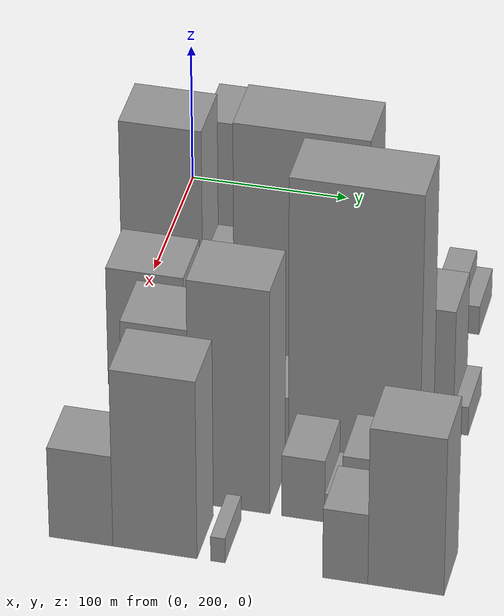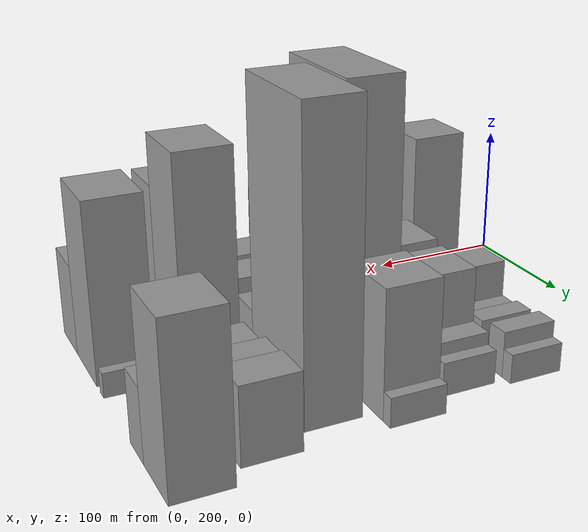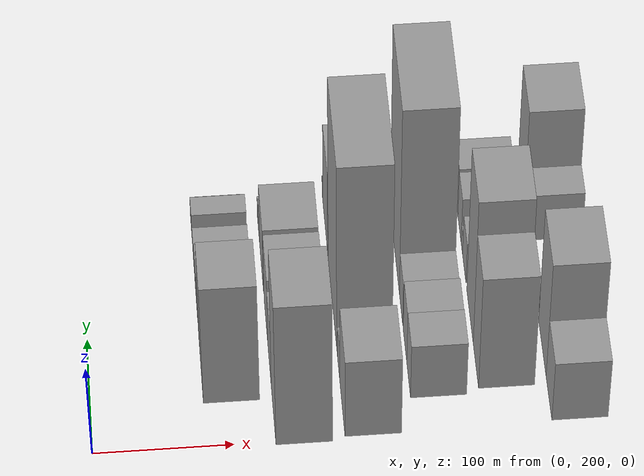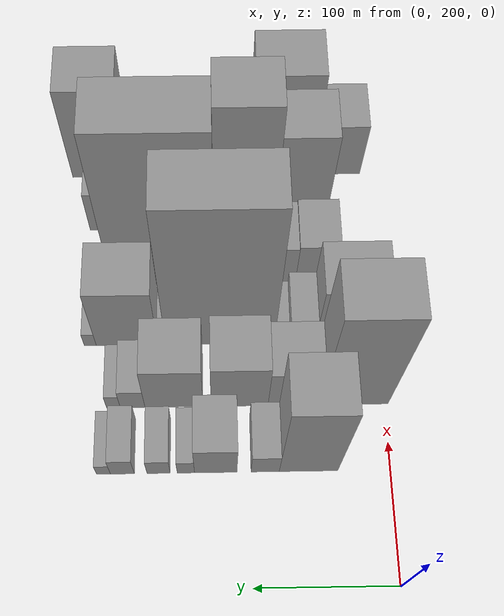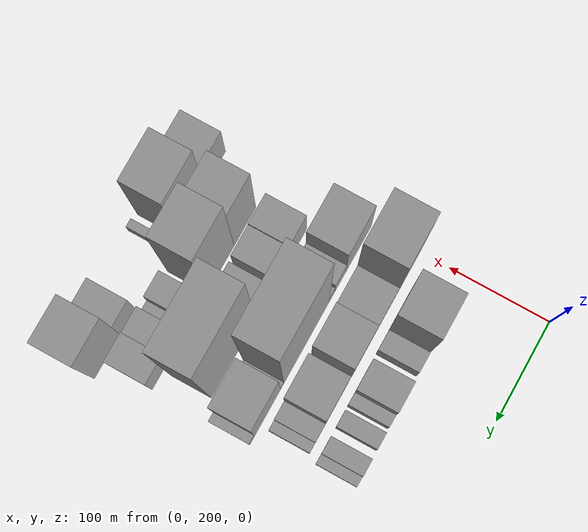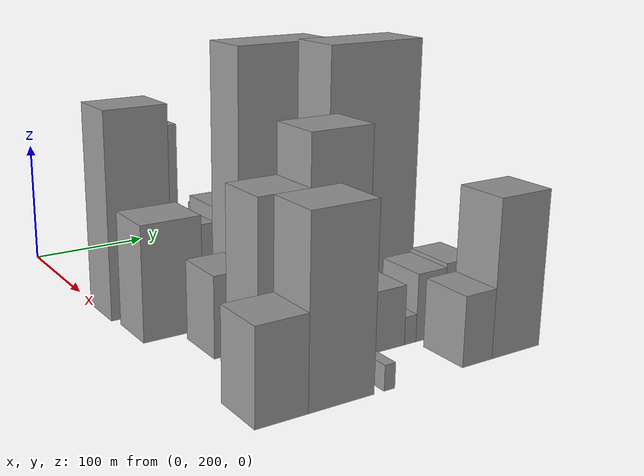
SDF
<sdf version="1.6">
 <world name="default">
  <model name="building_28">
   <static>1</static>
   <pose>100.0000 258.3487 0 0.000000 0.000000 0.000000</pose>
   <link name="link">
    <pose>0 0 66.00 0 0 0</pose>
    <collision name="collision"><geometry><box><size>40.0000 41.6270 132.0000</size></box></geometry></collision>
    <visual name="visual">
     <cast_shadows>0</cast_shadows>
     <geometry><box><size>40.0000 41.6270 132.0000</size></box></geometry>
     <material>
      <script>
       <uri>model://grey_wall/materials/scripts</uri>
       <uri>model://grey_wall/materials/textures</uri>
       <name>vrc/grey_wall</name>
      </script>
     </material>
    </visual>
   </link>
  </model>
  <model name="building_29">
   <static>1</static>
   <pose>100.0000 289.1495 0 0.000000 0.000000 0.000000</pose>
   <link name="link">
    <pose>0 0 18.00 0 0 0</pose>
    <collision name="collision"><geometry><box><size>40.0000 19.9747 36.0000</size></box></geometry></collision>
    <visual name="visual">
     <cast_shadows>0</cast_shadows>
     <geometry><box><size>40.0000 19.9747 36.0000</size></box></geometry>
     <material>
      <script>
       <uri>model://grey_wall/materials/scripts</uri>
       <uri>model://grey_wall/materials/textures</uri>
       <name>vrc/grey_wall</name>
      </script>
     </material>
    </visual>
   </link>
  </model>
  <model name="building_30">
   <static>1</static>
   <pose>100.0000 324.1866 0 0.000000 0.000000 0.000000</pose>
   <link name="link">
    <pose>0 0 27.00 0 0 0</pose>
    <collision name="collision"><geometry><box><size>40.0000 30.0996 54.0000</size></box></geometry></collision>
    <visual name="visual">
     <cast_shadows>0</cast_shadows>
     <geometry><box><size>40.0000 30.0996 54.0000</size></box></geometry>
     <material>
      <script>
       <uri>model://grey_wall/materials/scripts</uri>
       <uri>model://grey_wall/materials/textures</uri>
       <name>vrc/grey_wall</name>
      </script>
     </material>
    </visual>
   </link>
  </model>
  <model name="building_31">
   <static>1</static>
   <pose>100.0000 345.3489 0 0.000000 0.000000 0.000000</pose>
   <link name="link">
    <pose>0 0 13.50 0 0 0</pose>
    <collision name="collision"><geometry><box><size>40.0000 12.2250 27.0000</size></box></geometry></collision>
    <visual name="visual">
     <cast_shadows>0</cast_shadows>
     <geometry><box><size>40.0000 12.2250 27.0000</size></box></geometry>
     <material>
      <script>
       <uri>model://grey_wall/materials/scripts</uri>
       <uri>model://grey_wall/materials/textures</uri>
       <name>vrc/grey_wall</name>
      </script>
     </material>
    </visual>
   </link>
  </model>
  <model name="building_32">
   <static>1</static>
   <pose>100.0000 364.6628 0 0.000000 0.000000 0.000000</pose>
   <link name="link">
    <pose>0 0 15.00 0 0 0</pose>
    <collision name="collision"><geometry><box><size>40.0000 16.4029 30.0000</size></box></geometry></collision>
    <visual name="visual">
     <cast_shadows>0</cast_shadows>
     <geometry><box><size>40.0000 16.4029 30.0000</size></box></geometry>
     <material>
      <script>
       <uri>model://grey_wall/materials/scripts</uri>
       <uri>model://grey_wall/materials/textures</uri>
       <name>vrc/grey_wall</name>
      </script>
     </material>
    </visual>
   </link>
  </model>
  <model name="building_33">
   <static>1</static>
   <pose>100.0000 390.3168 0 0.000000 0.000000 0.000000</pose>
   <link name="link">
    <pose>0 0 16.50 0 0 0</pose>
    <collision name="collision"><geometry><box><size>40.0000 16.9051 33.0000</size></box></geometry></collision>
    <visual name="visual">
     <cast_shadows>0</cast_shadows>
     <geometry><box><size>40.0000 16.9051 33.0000</size></box></geometry>
     <material>
      <script>
       <uri>model://grey_wall/materials/scripts</uri>
       <uri>model://grey_wall/materials/textures</uri>
       <name>vrc/grey_wall</name>
      </script>
     </material>
    </visual>
   </link>
  </model>
  <model name="building_34">
   <static>1</static>
   <pose>100.0000 403.7031 0 0.000000 0.000000 0.000000</pose>
   <link name="link">
    <pose>0 0 10.50 0 0 0</pose>
    <collision name="collision"><geometry><box><size>40.0000 9.8676 21.0000</size></box></geometry></collision>
    <visual name="visual">
     <cast_shadows>0</cast_shadows>
     <geometry><box><size>40.0000 9.8676 21.0000</size></box></geometry>
     <material>
      <script>
       <uri>model://grey_wall/materials/scripts</uri>
       <uri>model://grey_wall/materials/textures</uri>
       <name>vrc/grey_wall</name>
      </script>
     </material>
    </visual>
   </link>
  </model>
  <model name="building_72">
   <static>1</static>
   <pose>149.0000 222.7873 0 0.000000 0.000000 0.000000</pose>
   <link name="link">
    <pose>0 0 79.50 0 0 0</pose>
    <collision name="collision"><geometry><box><size>40.0000 50.3372 159.0000</size></box></geometry></collision>
    <visual name="visual">
     <cast_shadows>0</cast_shadows>
     <geometry><box><size>40.0000 50.3372 159.0000</size></box></geometry>
     <material>
      <script>
       <uri>model://grey_wall/materials/scripts</uri>
       <uri>model://grey_wall/materials/textures</uri>
       <name>vrc/grey_wall</name>
      </script>
     </material>
    </visual>
   </link>
  </model>
  <model name="building_73">
   <static>1</static>
   <pose>149.0000 266.7181 0 0.000000 0.000000 0.000000</pose>
   <link name="link">
    <pose>0 0 31.50 0 0 0</pose>
    <collision name="collision"><geometry><box><size>40.0000 37.5245 63.0000</size></box></geometry></collision>
    <visual name="visual">
     <cast_shadows>0</cast_shadows>
     <geometry><box><size>40.0000 37.5245 63.0000</size></box></geometry>
     <material>
      <script>
       <uri>model://grey_wall/materials/scripts</uri>
       <uri>model://grey_wall/materials/textures</uri>
       <name>vrc/grey_wall</name>
      </script>
     </material>
    </visual>
   </link>
  </model>
  <model name="building_74">
   <static>1</static>
   <pose>149.0000 306.2105 0 0.000000 0.000000 0.000000</pose>
   <link name="link">
    <pose>0 0 37.50 0 0 0</pose>
    <collision name="collision"><geometry><box><size>40.0000 41.4601 75.0000</size></box></geometry></collision>
    <visual name="visual">
     <cast_shadows>0</cast_shadows>
     <geometry><box><size>40.0000 41.4601 75.0000</size></box></geometry>
     <material>
      <script>
       <uri>model://grey_wall/materials/scripts</uri>
       <uri>model://grey_wall/materials/textures</uri>
       <name>vrc/grey_wall</name>
      </script>
     </material>
    </visual>
   </link>
  </model>
  <model name="building_75">
   <static>1</static>
   <pose>149.0000 354.0770 0 0.000000 0.000000 0.000000</pose>
   <link name="link">
    <pose>0 0 36.00 0 0 0</pose>
    <collision name="collision"><geometry><box><size>40.0000 42.2728 72.0000</size></box></geometry></collision>
    <visual name="visual">
     <cast_shadows>0</cast_shadows>
     <geometry><box><size>40.0000 42.2728 72.0000</size></box></geometry>
     <material>
      <script>
       <uri>model://grey_wall/materials/scripts</uri>
       <uri>model://grey_wall/materials/textures</uri>
       <name>vrc/grey_wall</name>
      </script>
     </material>
    </visual>
   </link>
  </model>
  <model name="building_76">
   <static>1</static>
   <pose>149.0000 384.2077 0 0.000000 0.000000 0.000000</pose>
   <link name="link">
    <pose>0 0 16.50 0 0 0</pose>
    <collision name="collision"><geometry><box><size>40.0000 17.9886 33.0000</size></box></geometry></collision>
    <visual name="visual">
     <cast_shadows>0</cast_shadows>
     <geometry><box><size>40.0000 17.9886 33.0000</size></box></geometry>
     <material>
      <script>
       <uri>model://grey_wall/materials/scripts</uri>
       <uri>model://grey_wall/materials/textures</uri>
       <name>vrc/grey_wall</name>
      </script>
     </material>
    </visual>
   </link>
  </model>
  <model name="building_77">
   <static>1</static>
   <pose>149.0000 398.1932 0 0.000000 0.000000 0.000000</pose>
   <link name="link">
    <pose>0 0 12.00 0 0 0</pose>
    <collision name="collision"><geometry><box><size>40.0000 9.9822 24.0000</size></box></geometry></collision>
    <visual name="visual">
     <cast_shadows>0</cast_shadows>
     <geometry><box><size>40.0000 9.9822 24.0000</size></box></geometry>
     <material>
      <script>
       <uri>model://grey_wall/materials/scripts</uri>
       <uri>model://grey_wall/materials/textures</uri>
       <name>vrc/grey_wall</name>
      </script>
     </material>
    </visual>
   </link>
  </model>
  <model name="building_115">
   <static>1</static>
   <pose>198.0000 224.7339 0 0.000000 0.000000 0.000000</pose>
   <link name="link">
    <pose>0 0 43.50 0 0 0</pose>
    <collision name="collision"><geometry><box><size>40.0000 47.3138 87.0000</size></box></geometry></collision>
    <visual name="visual">
     <cast_shadows>0</cast_shadows>
     <geometry><box><size>40.0000 47.3138 87.0000</size></box></geometry>
     <material>
      <script>
       <uri>model://grey_wall/materials/scripts</uri>
       <uri>model://grey_wall/materials/textures</uri>
       <name>vrc/grey_wall</name>
      </script>
     </material>
    </visual>
   </link>
  </model>
  <model name="building_116">
   <static>1</static>
   <pose>198.0000 258.4182 0 0.000000 0.000000 0.000000</pose>
   <link name="link">
    <pose>0 0 19.50 0 0 0</pose>
    <collision name="collision"><geometry><box><size>40.0000 20.0548 39.0000</size></box></geometry></collision>
    <visual name="visual">
     <cast_shadows>0</cast_shadows>
     <geometry><box><size>40.0000 20.0548 39.0000</size></box></geometry>
     <material>
      <script>
       <uri>model://grey_wall/materials/scripts</uri>
       <uri>model://grey_wall/materials/textures</uri>
       <name>vrc/grey_wall</name>
      </script>
     </material>
    </visual>
   </link>
  </model>
  <model name="building_117">
   <static>1</static>
   <pose>198.0000 273.7529 0 0.000000 0.000000 0.000000</pose>
   <link name="link">
    <pose>0 0 12.00 0 0 0</pose>
    <collision name="collision"><geometry><box><size>40.0000 10.6147 24.0000</size></box></geometry></collision>
    <visual name="visual">
     <cast_shadows>0</cast_shadows>
     <geometry><box><size>40.0000 10.6147 24.0000</size></box></geometry>
     <material>
      <script>
       <uri>model://grey_wall/materials/scripts</uri>
       <uri>model://grey_wall/materials/textures</uri>
       <name>vrc/grey_wall</name>
      </script>
     </material>
    </visual>
   </link>
  </model>
  <model name="building_118">
   <static>1</static>
   <pose>198.0000 319.8002 0 0.000000 0.000000 0.000000</pose>
   <link name="link">
    <pose>0 0 102.00 0 0 0</pose>
    <collision name="collision"><geometry><box><size>40.0000 81.4798 204.0000</size></box></geometry></collision>
    <visual name="visual">
     <cast_shadows>0</cast_shadows>
     <geometry><box><size>40.0000 81.4798 204.0000</size></box></geometry>
     <material>
      <script>
       <uri>model://grey_wall/materials/scripts</uri>
       <uri>model://grey_wall/materials/textures</uri>
       <name>vrc/grey_wall</name>
      </script>
     </material>
    </visual>
   </link>
  </model>
  <model name="building_119">
   <static>1</static>
   <pose>198.0000 363.5542 0 0.000000 0.000000 0.000000</pose>
   <link name="link">
    <pose>0 0 7.50 0 0 0</pose>
    <collision name="collision"><geometry><box><size>40.0000 6.0283 15.0000</size></box></geometry></collision>
    <visual name="visual">
     <cast_shadows>0</cast_shadows>
     <geometry><box><size>40.0000 6.0283 15.0000</size></box></geometry>
     <material>
      <script>
       <uri>model://grey_wall/materials/scripts</uri>
       <uri>model://grey_wall/materials/textures</uri>
       <name>vrc/grey_wall</name>
      </script>
     </material>
    </visual>
   </link>
  </model>
  <model name="building_120">
   <static>1</static>
   <pose>198.0000 389.5732 0 0.000000 0.000000 0.000000</pose>
   <link name="link">
    <pose>0 0 45.00 0 0 0</pose>
    <collision name="collision"><geometry><box><size>40.0000 46.0097 90.0000</size></box></geometry></collision>
    <visual name="visual">
     <cast_shadows>0</cast_shadows>
     <geometry><box><size>40.0000 46.0097 90.0000</size></box></geometry>
     <material>
      <script>
       <uri>model://grey_wall/materials/scripts</uri>
       <uri>model://grey_wall/materials/textures</uri>
       <name>vrc/grey_wall</name>
      </script>
     </material>
    </visual>
   </link>
  </model>
  <model name="building_121">
   <static>1</static>
   <pose>198.0000 417.0687 0 0.000000 0.000000 0.000000</pose>
   <link name="link">
    <pose>0 0 10.50 0 0 0</pose>
    <collision name="collision"><geometry><box><size>40.0000 8.9812 21.0000</size></box></geometry></collision>
    <visual name="visual">
     <cast_shadows>0</cast_shadows>
     <geometry><box><size>40.0000 8.9812 21.0000</size></box></geometry>
     <material>
      <script>
       <uri>model://grey_wall/materials/scripts</uri>
       <uri>model://grey_wall/materials/textures</uri>
       <name>vrc/grey_wall</name>
      </script>
     </material>
    </visual>
   </link>
  </model>
  <model name="building_167">
   <static>1</static>
   <pose>247.0000 246.0816 0 0.000000 0.000000 0.000000</pose>
   <link name="link">
    <pose>0 0 30.00 0 0 0</pose>
    <collision name="collision"><geometry><box><size>40.0000 30.1819 60.0000</size></box></geometry></collision>
    <visual name="visual">
     <cast_shadows>0</cast_shadows>
     <geometry><box><size>40.0000 30.1819 60.0000</size></box></geometry>
     <material>
      <script>
       <uri>model://grey_wall/materials/scripts</uri>
       <uri>model://grey_wall/materials/textures</uri>
       <name>vrc/grey_wall</name>
      </script>
     </material>
    </visual>
   </link>
  </model>
  <model name="building_168">
   <static>1</static>
   <pose>247.0000 276.3385 0 0.000000 0.000000 0.000000</pose>
   <link name="link">
    <pose>0 0 28.50 0 0 0</pose>
    <collision name="collision"><geometry><box><size>40.0000 30.3320 57.0000</size></box></geometry></collision>
    <visual name="visual">
     <cast_shadows>0</cast_shadows>
     <geometry><box><size>40.0000 30.3320 57.0000</size></box></geometry>
     <material>
      <script>
       <uri>model://grey_wall/materials/scripts</uri>
       <uri>model://grey_wall/materials/textures</uri>
       <name>vrc/grey_wall</name>
      </script>
     </material>
    </visual>
   </link>
  </model>
  <model name="building_169">
   <static>1</static>
   <pose>247.0000 309.5187 0 0.000000 0.000000 0.000000</pose>
   <link name="link">
    <pose>0 0 24.00 0 0 0</pose>
    <collision name="collision"><geometry><box><size>40.0000 28.0284 48.0000</size></box></geometry></collision>
    <visual name="visual">
     <cast_shadows>0</cast_shadows>
     <geometry><box><size>40.0000 28.0284 48.0000</size></box></geometry>
     <material>
      <script>
       <uri>model://grey_wall/materials/scripts</uri>
       <uri>model://grey_wall/materials/textures</uri>
       <name>vrc/grey_wall</name>
      </script>
     </material>
    </visual>
   </link>
  </model>
  <model name="building_170">
   <static>1</static>
   <pose>247.0000 362.9396 0 0.000000 0.000000 0.000000</pose>
   <link name="link">
    <pose>0 0 103.50 0 0 0</pose>
    <collision name="collision"><geometry><box><size>40.0000 78.8132 207.0000</size></box></geometry></collision>
    <visual name="visual">
     <cast_shadows>0</cast_shadows>
     <geometry><box><size>40.0000 78.8132 207.0000</size></box></geometry>
     <material>
      <script>
       <uri>model://grey_wall/materials/scripts</uri>
       <uri>model://grey_wall/materials/textures</uri>
       <name>vrc/grey_wall</name>
      </script>
     </material>
    </visual>
   </link>
  </model>
  <model name="building_216">
   <static>1</static>
   <pose>296.0000 255.3414 0 0.000000 0.000000 0.000000</pose>
   <link name="link">
    <pose>0 0 63.00 0 0 0</pose>
    <collision name="collision"><geometry><box><size>40.0000 39.4004 126.0000</size></box></geometry></collision>
    <visual name="visual">
     <cast_shadows>0</cast_shadows>
     <geometry><box><size>40.0000 39.4004 126.0000</size></box></geometry>
     <material>
      <script>
       <uri>model://grey_wall/materials/scripts</uri>
       <uri>model://grey_wall/materials/textures</uri>
       <name>vrc/grey_wall</name>
      </script>
     </material>
    </visual>
   </link>
  </model>
  <model name="building_217">
   <static>1</static>
   <pose>296.0000 299.3544 0 0.000000 0.000000 0.000000</pose>
   <link name="link">
    <pose>0 0 81.00 0 0 0</pose>
    <collision name="collision"><geometry><box><size>40.0000 48.6257 162.0000</size></box></geometry></collision>
    <visual name="visual">
     <cast_shadows>0</cast_shadows>
     <geometry><box><size>40.0000 48.6257 162.0000</size></box></geometry>
     <material>
      <script>
       <uri>model://grey_wall/materials/scripts</uri>
       <uri>model://grey_wall/materials/textures</uri>
       <name>vrc/grey_wall</name>
      </script>
     </material>
    </visual>
   </link>
  </model>
  <model name="building_218">
   <static>1</static>
   <pose>296.0000 343.5324 0 0.000000 0.000000 0.000000</pose>
   <link name="link">
    <pose>0 0 22.50 0 0 0</pose>
    <collision name="collision"><geometry><box><size>40.0000 25.7305 45.0000</size></box></geometry></collision>
    <visual name="visual">
     <cast_shadows>0</cast_shadows>
     <geometry><box><size>40.0000 25.7305 45.0000</size></box></geometry>
     <material>
      <script>
       <uri>model://grey_wall/materials/scripts</uri>
       <uri>model://grey_wall/materials/textures</uri>
       <name>vrc/grey_wall</name>
      </script>
     </material>
    </visual>
   </link>
  </model>
  <model name="building_219">
   <static>1</static>
   <pose>296.0000 361.6015 0 0.000000 0.000000 0.000000</pose>
   <link name="link">
    <pose>0 0 10.50 0 0 0</pose>
    <collision name="collision"><geometry><box><size>40.0000 10.4077 21.0000</size></box></geometry></collision>
    <visual name="visual">
     <cast_shadows>0</cast_shadows>
     <geometry><box><size>40.0000 10.4077 21.0000</size></box></geometry>
     <material>
      <script>
       <uri>model://grey_wall/materials/scripts</uri>
       <uri>model://grey_wall/materials/textures</uri>
       <name>vrc/grey_wall</name>
      </script>
     </material>
    </visual>
   </link>
  </model>
  <model name="building_220">
   <static>1</static>
   <pose>296.0000 379.6487 0 0.000000 0.000000 0.000000</pose>
   <link name="link">
    <pose>0 0 25.50 0 0 0</pose>
    <collision name="collision"><geometry><box><size>40.0000 25.6866 51.0000</size></box></geometry></collision>
    <visual name="visual">
     <cast_shadows>0</cast_shadows>
     <geometry><box><size>40.0000 25.6866 51.0000</size></box></geometry>
     <material>
      <script>
       <uri>model://grey_wall/materials/scripts</uri>
       <uri>model://grey_wall/materials/textures</uri>
       <name>vrc/grey_wall</name>
      </script>
     </material>
    </visual>
   </link>
  </model>
  <model name="building_221">
   <static>1</static>
   <pose>296.0000 406.7369 0 0.000000 0.000000 0.000000</pose>
   <link name="link">
    <pose>0 0 27.00 0 0 0</pose>
    <collision name="collision"><geometry><box><size>40.0000 28.4896 54.0000</size></box></geometry></collision>
    <visual name="visual">
     <cast_shadows>0</cast_shadows>
     <geometry><box><size>40.0000 28.4896 54.0000</size></box></geometry>
     <material>
      <script>
       <uri>model://grey_wall/materials/scripts</uri>
       <uri>model://grey_wall/materials/textures</uri>
       <name>vrc/grey_wall</name>
      </script>
     </material>
    </visual>
   </link>
  </model>
  <model name="building_260">
   <static>1</static>
   <pose>345.0000 222.9693 0 0.000000 0.000000 0.000000</pose>
   <link name="link">
    <pose>0 0 33.00 0 0 0</pose>
    <collision name="collision"><geometry><box><size>40.0000 37.9975 66.0000</size></box></geometry></collision>
    <visual name="visual">
     <cast_shadows>0</cast_shadows>
     <geometry><box><size>40.0000 37.9975 66.0000</size></box></geometry>
     <material>
      <script>
       <uri>model://grey_wall/materials/scripts</uri>
       <uri>model://grey_wall/materials/textures</uri>
       <name>vrc/grey_wall</name>
      </script>
     </material>
    </visual>
   </link>
  </model>
  <model name="building_261">
   <static>1</static>
   <pose>345.0000 267.0072 0 0.000000 0.000000 0.000000</pose>
   <link name="link">
    <pose>0 0 64.50 0 0 0</pose>
    <collision name="collision"><geometry><box><size>40.0000 50.0784 129.0000</size></box></geometry></collision>
    <visual name="visual">
     <cast_shadows>0</cast_shadows>
     <geometry><box><size>40.0000 50.0784 129.0000</size></box></geometry>
     <material>
      <script>
       <uri>model://grey_wall/materials/scripts</uri>
       <uri>model://grey_wall/materials/textures</uri>
       <name>vrc/grey_wall</name>
      </script>
     </material>
    </visual>
   </link>
  </model>
  <model name="building_262">
   <static>1</static>
   <pose>345.0000 304.3504 0 0.000000 0.000000 0.000000</pose>
   <link name="link">
    <pose>0 0 9.00 0 0 0</pose>
    <collision name="collision"><geometry><box><size>40.0000 8.6081 18.0000</size></box></geometry></collision>
    <visual name="visual">
     <cast_shadows>0</cast_shadows>
     <geometry><box><size>40.0000 8.6081 18.0000</size></box></geometry>
     <material>
      <script>
       <uri>model://grey_wall/materials/scripts</uri>
       <uri>model://grey_wall/materials/textures</uri>
       <name>vrc/grey_wall</name>
      </script>
     </material>
    </visual>
   </link>
  </model>
  <model name="building_263">
   <static>1</static>
   <pose>345.0000 379.4242 0 0.000000 0.000000 0.000000</pose>
   <link name="link">
    <pose>0 0 25.50 0 0 0</pose>
    <collision name="collision"><geometry><box><size>40.0000 26.5131 51.0000</size></box></geometry></collision>
    <visual name="visual">
     <cast_shadows>0</cast_shadows>
     <geometry><box><size>40.0000 26.5131 51.0000</size></box></geometry>
     <material>
      <script>
       <uri>model://grey_wall/materials/scripts</uri>
       <uri>model://grey_wall/materials/textures</uri>
       <name>vrc/grey_wall</name>
      </script>
     </material>
    </visual>
   </link>
  </model>
  <model name="building_264">
   <static>1</static>
   <pose>345.0000 414.9102 0 0.000000 0.000000 0.000000</pose>
   <link name="link">
    <pose>0 0 57.00 0 0 0</pose>
    <collision name="collision"><geometry><box><size>40.0000 44.4589 114.0000</size></box></geometry></collision>
    <visual name="visual">
     <cast_shadows>0</cast_shadows>
     <geometry><box><size>40.0000 44.4589 114.0000</size></box></geometry>
     <material>
      <script>
       <uri>model://grey_wall/materials/scripts</uri>
       <uri>model://grey_wall/materials/textures</uri>
       <name>vrc/grey_wall</name>
      </script>
     </material>
    </visual>
   </link>
  </model>
 </world>
</sdf>
